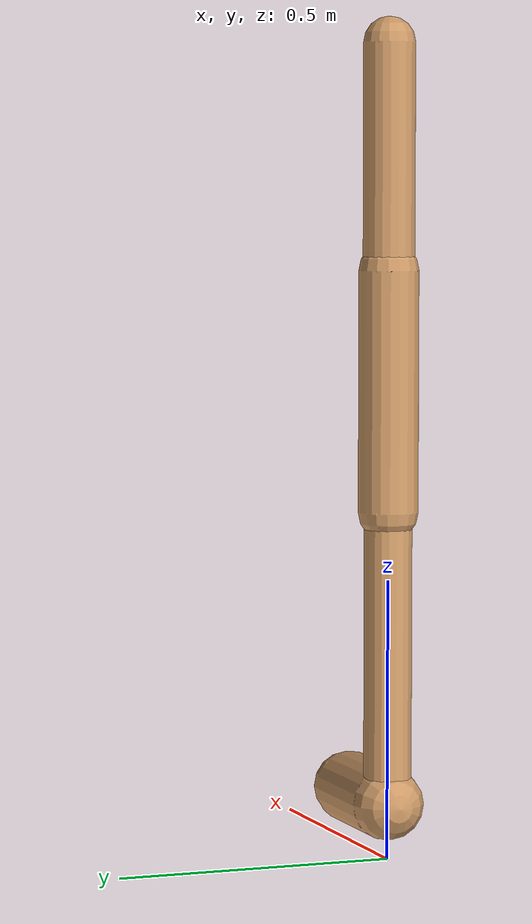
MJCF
<mujoco model="walker2d">
  <compiler angle="degree" coordinate="global" inertiafromgeom="true" />
  <default>
    <joint armature="0.01" damping=".1" limited="true" />
    <geom conaffinity="0" condim="3" contype="1" density="1000" friction="0.8 .1 .1" rgba="0.8 0.6 .4 1" />
  </default>
  <option integrator="RK4" timestep="0.002" />
  <worldbody>

    <body name="torso" pos="0 0 -0.04765640921536186">
      <joint armature="0" axis="1 0 0" damping="0" limited="false" name="ignorex" pos="0 0 0" stiffness="0" type="slide" />
      <joint armature="0" axis="0 0 1" damping="0" limited="false" name="ignorez" pos="0 0 0" ref="1.25" stiffness="0" type="slide" />
      <joint armature="0" axis="0 1 0" damping="0" limited="false" name="ignorey" pos="0 0 0" stiffness="0" type="hinge" />
      <geom fromto="0 0 1.45 0 0 1.05" name="torso_geom" size="0.045993487968927306" type="capsule" />
      <body name="thigh">
        <joint axis="0 -1 0" name="thigh_joint" pos="0 0 1.05" range="-150 0" type="hinge" />
        <geom fromto="0.0 0.0 1.05 0.0 0.0 0.6225740885756977" name="thigh_geom" size="0.05332542307549115" type="capsule" />
        <body name="leg" pos="0.0 0.0 0.02257408857569776">
          <joint axis="0 -1 0" name="leg_joint" pos="0 0 0.6" range="-150 0" type="hinge" />
          <geom fromto="0.0 0.0 0.6 0.0 0.0 0.12508232063966412" name="leg_geom" size="0.042660338460392924" type="capsule" />
          <body name="foot" pos="0.0 0.0 0.02508232063966412">
            <joint axis="0 -1 0" name="foot_joint" pos="0 0 0.1" range="-45 45" type="hinge" />
            <geom fromto="0.0 0.0 0.10000000000000002 0.18485558911767616 0.0 0.10000000000000002" name="foot_geom" size="0.06491932272465795" type="capsule" />
          </body>
        </body>
      </body>

      <body name="thigh_left">
        <joint axis="0 -1 0" name="thigh_left_joint" pos="0 0 1.05" range="-150 0" type="hinge" />
        <geom fromto="0.0 0.0 1.05 0.0 0.0 0.6225740885756977" name="thigh_left_geom" rgba=".7 .3 .6 1" size="0.05332542307549115" type="capsule" />
        <body name="leg_left" pos="0.0 0.0 0.02257408857569776">
          <joint axis="0 -1 0" name="leg_left_joint" pos="0 0 0.6" range="-150 0" type="hinge" />
          <geom fromto="0.0 0.0 0.6 0.0 0.0 0.12508232063966412" name="leg_left_geom" rgba=".7 .3 .6 1" size="0.042660338460392924" type="capsule" />
          <body name="foot_left" pos="0.0 0.0 0.02508232063966412">
            <joint axis="0 -1 0" name="foot_left_joint" pos="0 0 0.1" range="-45 45" type="hinge" />
            <geom fromto="0.0 0.0 0.10000000000000002 0.18485558911767616 0.0 0.10000000000000002" name="foot_left_geom" rgba=".7 .3 .6 1" size="0.06491932272465795" type="capsule" />
          </body>
        </body>
      </body>
    </body>
  </worldbody>
  <actuator>

    <motor ctrllimited="true" ctrlrange="-1.0 1.0" gear="100" joint="thigh_joint" />
    <motor ctrllimited="true" ctrlrange="-1.0 1.0" gear="100" joint="leg_joint" />
    <motor ctrllimited="true" ctrlrange="-1.0 1.0" gear="100" joint="foot_joint" />
    <motor ctrllimited="true" ctrlrange="-1.0 1.0" gear="100" joint="thigh_left_joint" />
    <motor ctrllimited="true" ctrlrange="-1.0 1.0" gear="100" joint="leg_left_joint" />
    <motor ctrllimited="true" ctrlrange="-1.0 1.0" gear="100" joint="foot_left_joint" />

  </actuator>
</mujoco>
